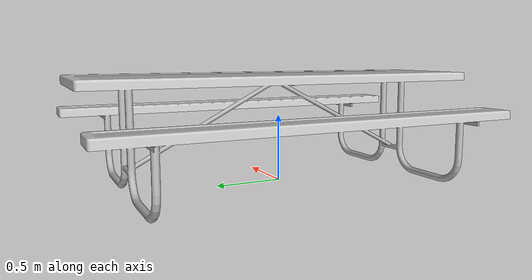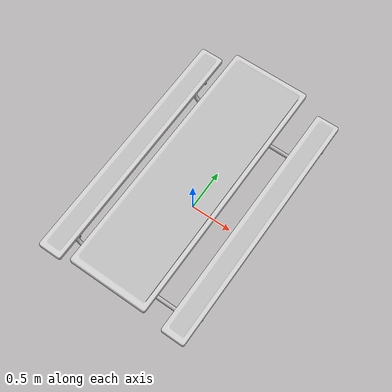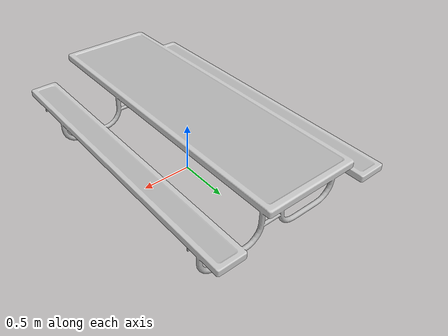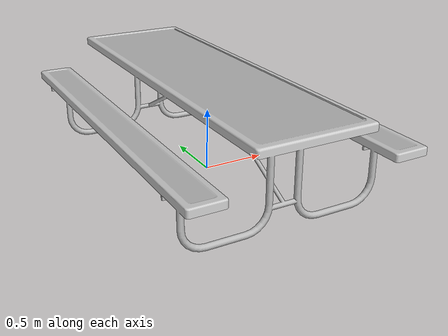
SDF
<?xml version="1.0" ?>
<sdf version="1.5">
  <model name="Gray Picnic Table">
    <static>true</static>
    <pose>0 0 0 0 0 0</pose>
    <link name="link">
      <collision name="collision">
        <geometry>
          <mesh>
            <uri>model://picnic_table/meshes/gray_picnic_table.dae</uri>
            <scale>1 1 1</scale>
          </mesh>
        </geometry>
      </collision>
      <visual name="visual">
        <geometry>
          <mesh>
            <uri>model://picnic_table/meshes/gray_picnic_table.dae</uri>
            <scale>1 1 1</scale>
          </mesh>
        </geometry>
      </visual>
    </link>
  </model>
</sdf>
